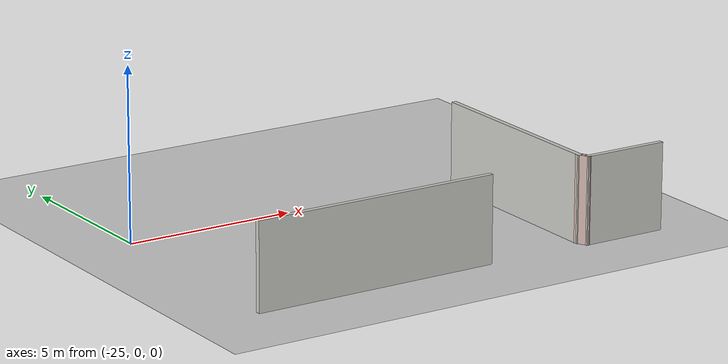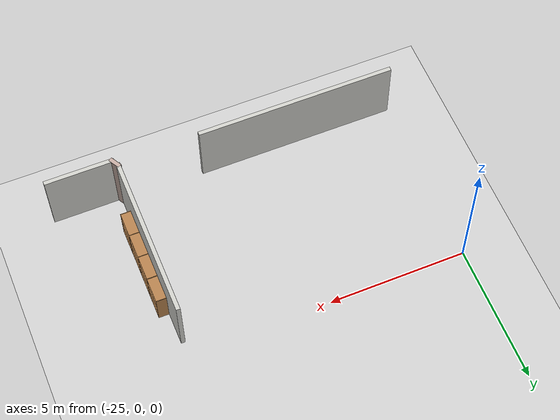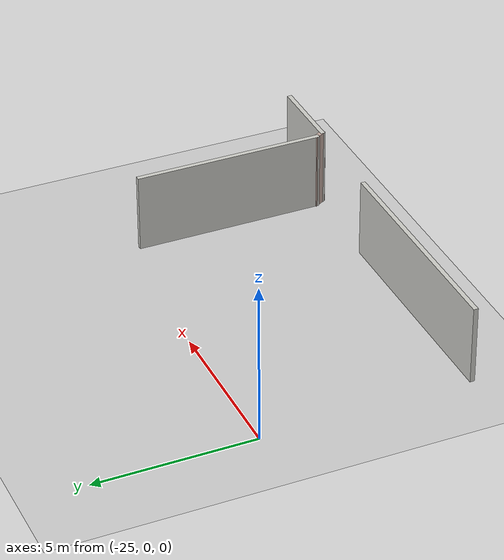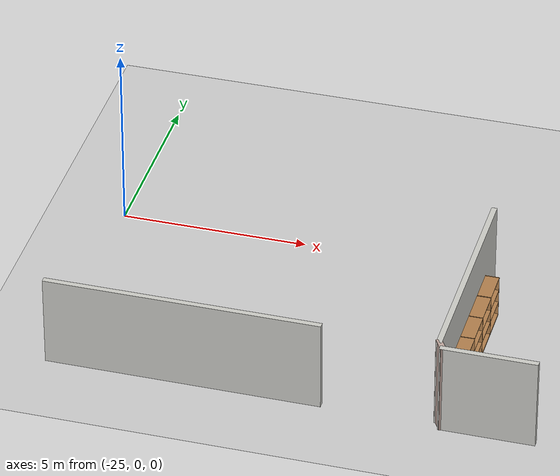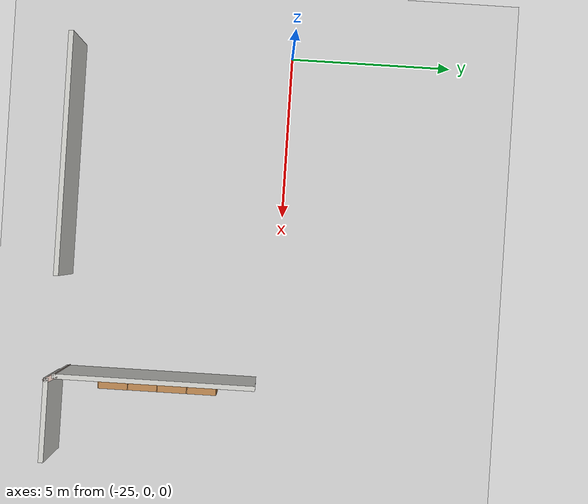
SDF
<sdf version="1.6">
 <world name="default">
  <model name="ground_plane">
   <static>1</static>
   <link name="link">
    <collision name="collision">
     <geometry><plane><normal>0 0 1</normal><size>100 100</size></plane></geometry>
     <surface><friction><ode><mu>100</mu><mu2>50</mu2></ode></friction></surface>
    </collision>
    <visual name="visual">
     <cast_shadows>0</cast_shadows>
     <geometry><plane><normal>0 0 1</normal><size>100 100</size></plane></geometry>
     <material>
      <script><uri>file://media/materials/scripts/gazebo.material</uri><name>Gazebo/Grey</name></script>
     </material>
    </visual>
   </link>
  </model>
  <model name="floor">
   <link name="Wall_213">
    <pose>-16.0931 -2.24145 0 0 0 -1.5708</pose>
    <visual name="Wall_213_Visual">
     <pose>0 0 1.25 0 -0 0</pose>
     <geometry><box><size>6 0.15 2.5</size></box></geometry>
     <material>
      <script><uri>file://media/materials/scripts/gazebo.material</uri><name>Gazebo/CeilingTiled</name></script>
      <ambient>0.760784 0.662745 0.627451 1</ambient>
     </material>
     <meta><layer>0</layer></meta>
    </visual>
    <collision name="Wall_213_Collision">
     <pose>0 0 1.25 0 -0 0</pose>
     <geometry><box><size>6 0.15 2.5</size></box></geometry>
     <surface>
      <friction>
       <ode><mu>1</mu><mu2>1</mu2><fdir1>0 0 0</fdir1><slip1>0</slip1><slip2>0</slip2></ode>
       <torsional>
        <coefficient>1</coefficient>
        <patch_radius>0</patch_radius>
        <surface_radius>0</surface_radius>
        <use_patch_radius>1</use_patch_radius>
        <ode><slip>0</slip></ode>
       </torsional>
      </friction>
      <bounce><restitution_coefficient>0</restitution_coefficient><threshold>1e+06</threshold></bounce>
      <contact>
       <collide_without_contact>0</collide_without_contact>
       <collide_without_contact_bitmask>1</collide_without_contact_bitmask>
       <collide_bitmask>1</collide_bitmask>
       <ode>
        <soft_cfm>0</soft_cfm>
        <soft_erp>0.2</soft_erp>
        <kp>1e+13</kp>
        <kd>1</kd>
        <max_vel>0.01</max_vel>
        <min_depth>0</min_depth>
       </ode>
       <bullet>
        <split_impulse>1</split_impulse>
        <split_impulse_penetration_threshold>-0.01</split_impulse_penetration_threshold>
        <soft_cfm>0</soft_cfm>
        <soft_erp>0.2</soft_erp>
        <kp>1e+13</kp>
        <kd>1</kd>
       </bullet>
      </contact>
     </surface>
    </collision>
   </link>
   <link name="Wall_217">
    <pose>-14.7745 -5.41807 0 0 -0 3.14159</pose>
    <visual name="Wall_217_Visual">
     <pose>0 0 1.25 0 -0 0</pose>
     <geometry><box><size>2.5 0.15 2.5</size></box></geometry>
     <material>
      <script><uri>file://media/materials/scripts/gazebo.material</uri><name>Gazebo/CeilingTiled</name></script>
      <ambient>0.760784 0.662745 0.627451 1</ambient>
     </material>
     <meta><layer>0</layer></meta>
    </visual>
    <collision name="Wall_217_Collision">
     <pose>0 0 1.25 0 -0 0</pose>
     <geometry><box><size>2.5 0.15 2.5</size></box></geometry>
     <surface>
      <friction>
       <ode><mu>1</mu><mu2>1</mu2><fdir1>0 0 0</fdir1><slip1>0</slip1><slip2>0</slip2></ode>
       <torsional>
        <coefficient>1</coefficient>
        <patch_radius>0</patch_radius>
        <surface_radius>0</surface_radius>
        <use_patch_radius>1</use_patch_radius>
        <ode><slip>0</slip></ode>
       </torsional>
      </friction>
      <bounce><restitution_coefficient>0</restitution_coefficient><threshold>1e+06</threshold></bounce>
      <contact>
       <collide_without_contact>0</collide_without_contact>
       <collide_without_contact_bitmask>1</collide_without_contact_bitmask>
       <collide_bitmask>1</collide_bitmask>
       <ode>
        <soft_cfm>0</soft_cfm>
        <soft_erp>0.2</soft_erp>
        <kp>1e+13</kp>
        <kd>1</kd>
        <max_vel>0.01</max_vel>
        <min_depth>0</min_depth>
       </ode>
       <bullet>
        <split_impulse>1</split_impulse>
        <split_impulse_penetration_threshold>-0.01</split_impulse_penetration_threshold>
        <soft_cfm>0</soft_cfm>
        <soft_erp>0.2</soft_erp>
        <kp>1e+13</kp>
        <kd>1</kd>
       </bullet>
      </contact>
     </surface>
    </collision>
   </link>
   <link name="Wall_218">
    <pose>-16.0213 -5.29226 0 0 -0 2.08961</pose>
    <visual name="Wall_218_Visual">
     <pose>0 0 1.25 0 -0 0</pose>
     <geometry><box><size>0.439744 0.15 2.5</size></box></geometry>
     <material>
      <script><uri>file://media/materials/scripts/gazebo.material</uri><name>Gazebo/Grey</name></script>
      <ambient>0.760784 0.662745 0.627451 1</ambient>
     </material>
     <meta><layer>0</layer></meta>
    </visual>
    <collision name="Wall_218_Collision">
     <pose>0 0 1.25 0 -0 0</pose>
     <geometry><box><size>0.439744 0.15 2.5</size></box></geometry>
     <surface>
      <friction>
       <ode><mu>1</mu><mu2>1</mu2><fdir1>0 0 0</fdir1><slip1>0</slip1><slip2>0</slip2></ode>
       <torsional>
        <coefficient>1</coefficient>
        <patch_radius>0</patch_radius>
        <surface_radius>0</surface_radius>
        <use_patch_radius>1</use_patch_radius>
        <ode><slip>0</slip></ode>
       </torsional>
      </friction>
      <bounce><restitution_coefficient>0</restitution_coefficient><threshold>1e+06</threshold></bounce>
      <contact>
       <collide_without_contact>0</collide_without_contact>
       <collide_without_contact_bitmask>1</collide_without_contact_bitmask>
       <collide_bitmask>1</collide_bitmask>
       <ode>
        <soft_cfm>0</soft_cfm>
        <soft_erp>0.2</soft_erp>
        <kp>1e+13</kp>
        <kd>1</kd>
        <max_vel>0.01</max_vel>
        <min_depth>0</min_depth>
       </ode>
       <bullet>
        <split_impulse>1</split_impulse>
        <split_impulse_penetration_threshold>-0.01</split_impulse_penetration_threshold>
        <soft_cfm>0</soft_cfm>
        <soft_erp>0.2</soft_erp>
        <kp>1e+13</kp>
        <kd>1</kd>
       </bullet>
      </contact>
     </surface>
    </collision>
   </link>
   <link name="Wall_44">
    <pose>-22.6839 -5.31227 0 0 -0 0</pose>
    <visual name="Wall_44_Visual">
     <pose>0 0 1.25 0 -0 0</pose>
     <geometry><box><size>7.25 0.15 2.5</size></box></geometry>
     <material>
      <script><uri>file://media/materials/scripts/gazebo.material</uri><name>Gazebo/CeilingTiled</name></script>
      <ambient>0.760784 0.662745 0.627451 1</ambient>
     </material>
     <meta><layer>0</layer></meta>
    </visual>
    <collision name="Wall_44_Collision">
     <pose>0 0 1.25 0 -0 0</pose>
     <geometry><box><size>7.25 0.15 2.5</size></box></geometry>
     <surface>
      <friction>
       <ode><mu>1</mu><mu2>1</mu2><fdir1>0 0 0</fdir1><slip1>0</slip1><slip2>0</slip2></ode>
       <torsional>
        <coefficient>1</coefficient>
        <patch_radius>0</patch_radius>
        <surface_radius>0</surface_radius>
        <use_patch_radius>1</use_patch_radius>
        <ode><slip>0</slip></ode>
       </torsional>
      </friction>
      <bounce><restitution_coefficient>0</restitution_coefficient><threshold>1e+06</threshold></bounce>
      <contact>
       <collide_without_contact>0</collide_without_contact>
       <collide_without_contact_bitmask>1</collide_without_contact_bitmask>
       <collide_bitmask>1</collide_bitmask>
       <ode>
        <soft_cfm>0</soft_cfm>
        <soft_erp>0.2</soft_erp>
        <kp>1e+13</kp>
        <kd>1</kd>
        <max_vel>0.01</max_vel>
        <min_depth>0</min_depth>
       </ode>
       <bullet>
        <split_impulse>1</split_impulse>
        <split_impulse_penetration_threshold>-0.01</split_impulse_penetration_threshold>
        <soft_cfm>0</soft_cfm>
        <soft_erp>0.2</soft_erp>
        <kp>1e+13</kp>
        <kd>1</kd>
       </bullet>
      </contact>
     </surface>
    </collision>
   </link>
   <static>1</static>
   <pose>1.26361 -1.27025 0 0 -0 0</pose>
  </model>
  <model name="Bookshelf-4_clone_31_clone_3">
   <model name="bookshelf">
    <static>1</static>
    <link name="link">
     <inertial><mass>1</mass></inertial>
     <collision name="back">
      <pose>0 0.005 0.6 0 -0 0</pose>
      <geometry><box><size>0.9 0.01 1.2</size></box></geometry>
     </collision>
     <visual name="visual1">
      <pose>0 0.005 0.6 0 -0 0</pose>
      <geometry><box><size>0.9 0.01 1.2</size></box></geometry>
      <material>
       <script><uri>file://media/materials/scripts/gazebo.material</uri><name>Gazebo/Wood</name></script>
      </material>
     </visual>
     <collision name="left_side">
      <pose>0.45 -0.195 0.6 0 -0 0</pose>
      <geometry><box><size>0.02 0.4 1.2</size></box></geometry>
     </collision>
     <visual name="visual2">
      <pose>0.45 -0.195 0.6 0 -0 0</pose>
      <geometry><box><size>0.02 0.4 1.2</size></box></geometry>
      <material>
       <script><uri>file://media/materials/scripts/gazebo.material</uri><name>Gazebo/Wood</name></script>
      </material>
     </visual>
     <collision name="right_side">
      <pose>-0.45 -0.195 0.6 0 -0 0</pose>
      <geometry><box><size>0.02 0.4 1.2</size></box></geometry>
     </collision>
     <visual name="visual3">
      <pose>-0.45 -0.195 0.6 0 -0 0</pose>
      <geometry><box><size>0.02 0.4 1.2</size></box></geometry>
      <material>
       <script><uri>file://media/materials/scripts/gazebo.material</uri><name>Gazebo/Wood</name></script>
      </material>
     </visual>
     <collision name="bottom">
      <pose>0 -0.195 0.03 0 -0 0</pose>
      <geometry><box><size>0.88 0.4 0.06</size></box></geometry>
     </collision>
     <visual name="visual4">
      <pose>0 -0.195 0.03 0 -0 0</pose>
      <geometry><box><size>0.88 0.4 0.06</size></box></geometry>
      <material>
       <script><uri>file://media/materials/scripts/gazebo.material</uri><name>Gazebo/Wood</name></script>
      </material>
     </visual>
     <collision name="top">
      <pose>0 -0.195 1.19 0 -0 0</pose>
      <geometry><box><size>0.88 0.4 0.02</size></box></geometry>
     </collision>
     <visual name="visual5">
      <pose>0 -0.195 1.19 0 -0 0</pose>
      <geometry><box><size>0.88 0.4 0.02</size></box></geometry>
      <material>
       <script><uri>file://media/materials/scripts/gazebo.material</uri><name>Gazebo/Wood</name></script>
      </material>
     </visual>
     <collision name="low_shelf">
      <pose>0 -0.195 0.43 0 -0 0</pose>
      <geometry><box><size>0.88 0.4 0.02</size></box></geometry>
     </collision>
     <visual name="visual6">
      <pose>0 -0.195 0.43 0 -0 0</pose>
      <geometry><box><size>0.88 0.4 0.02</size></box></geometry>
      <material>
       <script><uri>file://media/materials/scripts/gazebo.material</uri><name>Gazebo/Wood</name></script>
      </material>
     </visual>
     <collision name="high_shelf">
      <pose>0 -0.195 0.8 0 -0 0</pose>
      <geometry><box><size>0.88 0.4 0.02</size></box></geometry>
     </collision>
     <visual name="visual7">
      <pose>0 -0.195 0.8 0 -0 0</pose>
      <geometry><box><size>0.88 0.4 0.02</size></box></geometry>
      <material>
       <script><uri>file://media/materials/scripts/gazebo.material</uri><name>Gazebo/Wood</name></script>
      </material>
     </visual>
    </link>
    <pose>-1.35671 -0.002097 0 0 -0 0</pose>
   </model>
   <model name="bookshelf_0">
    <static>1</static>
    <link name="link">
     <inertial><mass>1</mass></inertial>
     <collision name="back">
      <pose>0 0.005 0.6 0 -0 0</pose>
      <geometry><box><size>0.9 0.01 1.2</size></box></geometry>
     </collision>
     <visual name="visual1">
      <pose>0 0.005 0.6 0 -0 0</pose>
      <geometry><box><size>0.9 0.01 1.2</size></box></geometry>
      <material>
       <script><uri>file://media/materials/scripts/gazebo.material</uri><name>Gazebo/Wood</name></script>
      </material>
     </visual>
     <collision name="left_side">
      <pose>0.45 -0.195 0.6 0 -0 0</pose>
      <geometry><box><size>0.02 0.4 1.2</size></box></geometry>
     </collision>
     <visual name="visual2">
      <pose>0.45 -0.195 0.6 0 -0 0</pose>
      <geometry><box><size>0.02 0.4 1.2</size></box></geometry>
      <material>
       <script><uri>file://media/materials/scripts/gazebo.material</uri><name>Gazebo/Wood</name></script>
      </material>
     </visual>
     <collision name="right_side">
      <pose>-0.45 -0.195 0.6 0 -0 0</pose>
      <geometry><box><size>0.02 0.4 1.2</size></box></geometry>
     </collision>
     <visual name="visual3">
      <pose>-0.45 -0.195 0.6 0 -0 0</pose>
      <geometry><box><size>0.02 0.4 1.2</size></box></geometry>
      <material>
       <script><uri>file://media/materials/scripts/gazebo.material</uri><name>Gazebo/Wood</name></script>
      </material>
     </visual>
     <collision name="bottom">
      <pose>0 -0.195 0.03 0 -0 0</pose>
      <geometry><box><size>0.88 0.4 0.06</size></box></geometry>
     </collision>
     <visual name="visual4">
      <pose>0 -0.195 0.03 0 -0 0</pose>
      <geometry><box><size>0.88 0.4 0.06</size></box></geometry>
      <material>
       <script><uri>file://media/materials/scripts/gazebo.material</uri><name>Gazebo/Wood</name></script>
      </material>
     </visual>
     <collision name="top">
      <pose>0 -0.195 1.19 0 -0 0</pose>
      <geometry><box><size>0.88 0.4 0.02</size></box></geometry>
     </collision>
     <visual name="visual5">
      <pose>0 -0.195 1.19 0 -0 0</pose>
      <geometry><box><size>0.88 0.4 0.02</size></box></geometry>
      <material>
       <script><uri>file://media/materials/scripts/gazebo.material</uri><name>Gazebo/Wood</name></script>
      </material>
     </visual>
     <collision name="low_shelf">
      <pose>0 -0.195 0.43 0 -0 0</pose>
      <geometry><box><size>0.88 0.4 0.02</size></box></geometry>
     </collision>
     <visual name="visual6">
      <pose>0 -0.195 0.43 0 -0 0</pose>
      <geometry><box><size>0.88 0.4 0.02</size></box></geometry>
      <material>
       <script><uri>file://media/materials/scripts/gazebo.material</uri><name>Gazebo/Wood</name></script>
      </material>
     </visual>
     <collision name="high_shelf">
      <pose>0 -0.195 0.8 0 -0 0</pose>
      <geometry><box><size>0.88 0.4 0.02</size></box></geometry>
     </collision>
     <visual name="visual7">
      <pose>0 -0.195 0.8 0 -0 0</pose>
      <geometry><box><size>0.88 0.4 0.02</size></box></geometry>
      <material>
       <script><uri>file://media/materials/scripts/gazebo.material</uri><name>Gazebo/Wood</name></script>
      </material>
     </visual>
    </link>
    <pose>-0.452974 0.001386 0 0 -0 0</pose>
   </model>
   <model name="bookshelf_1">
    <static>1</static>
    <link name="link">
     <inertial><mass>1</mass></inertial>
     <collision name="back">
      <pose>0 0.005 0.6 0 -0 0</pose>
      <geometry><box><size>0.9 0.01 1.2</size></box></geometry>
     </collision>
     <visual name="visual1">
      <pose>0 0.005 0.6 0 -0 0</pose>
      <geometry><box><size>0.9 0.01 1.2</size></box></geometry>
      <material>
       <script><uri>file://media/materials/scripts/gazebo.material</uri><name>Gazebo/Wood</name></script>
      </material>
     </visual>
     <collision name="left_side">
      <pose>0.45 -0.195 0.6 0 -0 0</pose>
      <geometry><box><size>0.02 0.4 1.2</size></box></geometry>
     </collision>
     <visual name="visual2">
      <pose>0.45 -0.195 0.6 0 -0 0</pose>
      <geometry><box><size>0.02 0.4 1.2</size></box></geometry>
      <material>
       <script><uri>file://media/materials/scripts/gazebo.material</uri><name>Gazebo/Wood</name></script>
      </material>
     </visual>
     <collision name="right_side">
      <pose>-0.45 -0.195 0.6 0 -0 0</pose>
      <geometry><box><size>0.02 0.4 1.2</size></box></geometry>
     </collision>
     <visual name="visual3">
      <pose>-0.45 -0.195 0.6 0 -0 0</pose>
      <geometry><box><size>0.02 0.4 1.2</size></box></geometry>
      <material>
       <script><uri>file://media/materials/scripts/gazebo.material</uri><name>Gazebo/Wood</name></script>
      </material>
     </visual>
     <collision name="bottom">
      <pose>0 -0.195 0.03 0 -0 0</pose>
      <geometry><box><size>0.88 0.4 0.06</size></box></geometry>
     </collision>
     <visual name="visual4">
      <pose>0 -0.195 0.03 0 -0 0</pose>
      <geometry><box><size>0.88 0.4 0.06</size></box></geometry>
      <material>
       <script><uri>file://media/materials/scripts/gazebo.material</uri><name>Gazebo/Wood</name></script>
      </material>
     </visual>
     <collision name="top">
      <pose>0 -0.195 1.19 0 -0 0</pose>
      <geometry><box><size>0.88 0.4 0.02</size></box></geometry>
     </collision>
     <visual name="visual5">
      <pose>0 -0.195 1.19 0 -0 0</pose>
      <geometry><box><size>0.88 0.4 0.02</size></box></geometry>
      <material>
       <script><uri>file://media/materials/scripts/gazebo.material</uri><name>Gazebo/Wood</name></script>
      </material>
     </visual>
     <collision name="low_shelf">
      <pose>0 -0.195 0.43 0 -0 0</pose>
      <geometry><box><size>0.88 0.4 0.02</size></box></geometry>
     </collision>
     <visual name="visual6">
      <pose>0 -0.195 0.43 0 -0 0</pose>
      <geometry><box><size>0.88 0.4 0.02</size></box></geometry>
      <material>
       <script><uri>file://media/materials/scripts/gazebo.material</uri><name>Gazebo/Wood</name></script>
      </material>
     </visual>
     <collision name="high_shelf">
      <pose>0 -0.195 0.8 0 -0 0</pose>
      <geometry><box><size>0.88 0.4 0.02</size></box></geometry>
     </collision>
     <visual name="visual7">
      <pose>0 -0.195 0.8 0 -0 0</pose>
      <geometry><box><size>0.88 0.4 0.02</size></box></geometry>
      <material>
       <script><uri>file://media/materials/scripts/gazebo.material</uri><name>Gazebo/Wood</name></script>
      </material>
     </visual>
    </link>
    <pose>0.450456 0.000733 0 0 -0 0</pose>
   </model>
   <model name="bookshelf_2">
    <static>1</static>
    <link name="link">
     <inertial><mass>1</mass></inertial>
     <collision name="back">
      <pose>0 0.005 0.6 0 -0 0</pose>
      <geometry><box><size>0.9 0.01 1.2</size></box></geometry>
     </collision>
     <visual name="visual1">
      <pose>0 0.005 0.6 0 -0 0</pose>
      <geometry><box><size>0.9 0.01 1.2</size></box></geometry>
      <material>
       <script><uri>file://media/materials/scripts/gazebo.material</uri><name>Gazebo/Wood</name></script>
      </material>
     </visual>
     <collision name="left_side">
      <pose>0.45 -0.195 0.6 0 -0 0</pose>
      <geometry><box><size>0.02 0.4 1.2</size></box></geometry>
     </collision>
     <visual name="visual2">
      <pose>0.45 -0.195 0.6 0 -0 0</pose>
      <geometry><box><size>0.02 0.4 1.2</size></box></geometry>
      <material>
       <script><uri>file://media/materials/scripts/gazebo.material</uri><name>Gazebo/Wood</name></script>
      </material>
     </visual>
     <collision name="right_side">
      <pose>-0.45 -0.195 0.6 0 -0 0</pose>
      <geometry><box><size>0.02 0.4 1.2</size></box></geometry>
     </collision>
     <visual name="visual3">
      <pose>-0.45 -0.195 0.6 0 -0 0</pose>
      <geometry><box><size>0.02 0.4 1.2</size></box></geometry>
      <material>
       <script><uri>file://media/materials/scripts/gazebo.material</uri><name>Gazebo/Wood</name></script>
      </material>
     </visual>
     <collision name="bottom">
      <pose>0 -0.195 0.03 0 -0 0</pose>
      <geometry><box><size>0.88 0.4 0.06</size></box></geometry>
     </collision>
     <visual name="visual4">
      <pose>0 -0.195 0.03 0 -0 0</pose>
      <geometry><box><size>0.88 0.4 0.06</size></box></geometry>
      <material>
       <script><uri>file://media/materials/scripts/gazebo.material</uri><name>Gazebo/Wood</name></script>
      </material>
     </visual>
     <collision name="top">
      <pose>0 -0.195 1.19 0 -0 0</pose>
      <geometry><box><size>0.88 0.4 0.02</size></box></geometry>
     </collision>
     <visual name="visual5">
      <pose>0 -0.195 1.19 0 -0 0</pose>
      <geometry><box><size>0.88 0.4 0.02</size></box></geometry>
      <material>
       <script><uri>file://media/materials/scripts/gazebo.material</uri><name>Gazebo/Wood</name></script>
      </material>
     </visual>
     <collision name="low_shelf">
      <pose>0 -0.195 0.43 0 -0 0</pose>
      <geometry><box><size>0.88 0.4 0.02</size></box></geometry>
     </collision>
     <visual name="visual6">
      <pose>0 -0.195 0.43 0 -0 0</pose>
      <geometry><box><size>0.88 0.4 0.02</size></box></geometry>
      <material>
       <script><uri>file://media/materials/scripts/gazebo.material</uri><name>Gazebo/Wood</name></script>
      </material>
     </visual>
     <collision name="high_shelf">
      <pose>0 -0.195 0.8 0 -0 0</pose>
      <geometry><box><size>0.88 0.4 0.02</size></box></geometry>
     </collision>
     <visual name="visual7">
      <pose>0 -0.195 0.8 0 -0 0</pose>
      <geometry><box><size>0.88 0.4 0.02</size></box></geometry>
      <material>
       <script><uri>file://media/materials/scripts/gazebo.material</uri><name>Gazebo/Wood</name></script>
      </material>
     </visual>
    </link>
    <pose>1.35922 -1.7e-05 0 0 -0 0</pose>
   </model>
   <static>0</static>
   <pose>-14.7797 -3.51251 0 0 -0 1.5707</pose>
  </model>
 </world>
</sdf>
